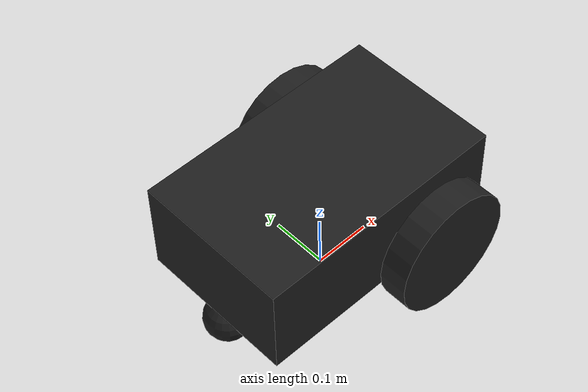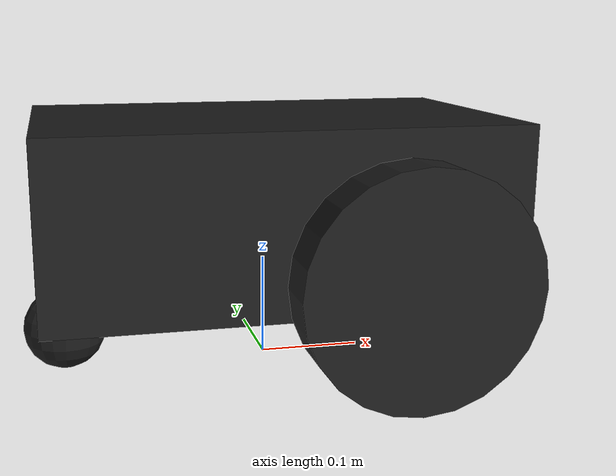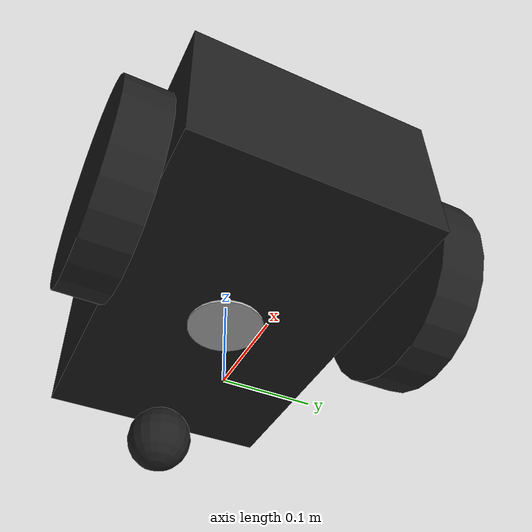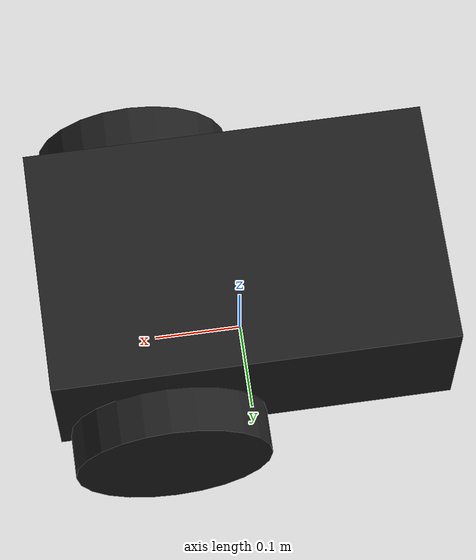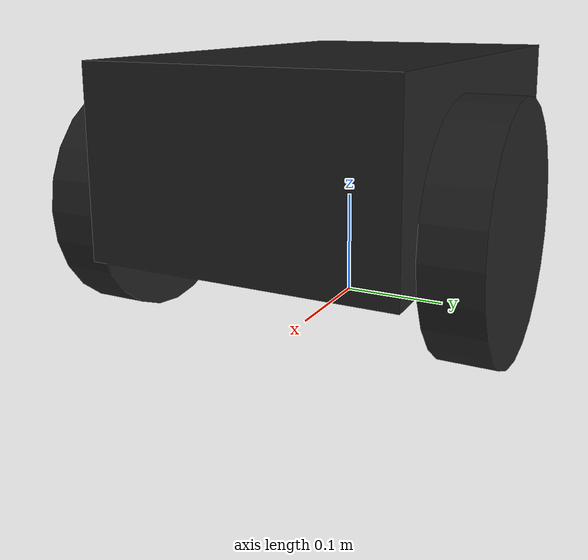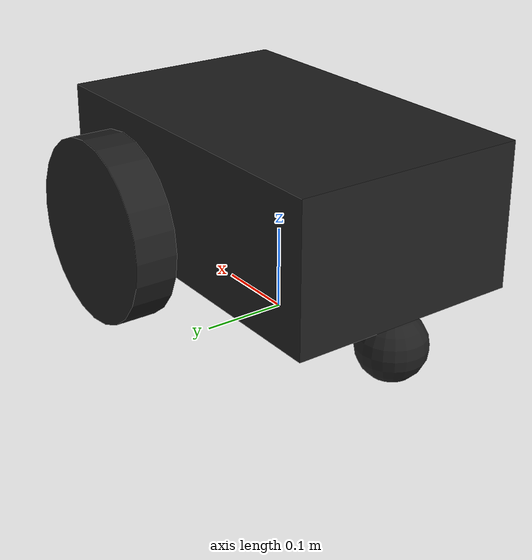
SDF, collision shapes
<?xml version="1.0"?>
<sdf version="1.7">
    <model name="pioneer2dx_laser_imu">
        <include>
            <uri>model://pioneer2dx</uri>
        </include>

        <include>
            <uri>model://velodyne_hdl-32</uri>
        </include>

        <joint name="lidar_joint" type="revolute">
            <parent>pioneer2dx_laser_imu::pioneer2dx::chassis</parent>
            <child>pioneer2dx_laser_imu::velodyne_hdl-32::base</child>
            <axis>
                <xyz>0 0 2</xyz>
                <limit>
                    <lower>0</lower>
                    <upper>0</upper>
                </limit>
            </axis>
        </joint>

    </model>

</sdf>

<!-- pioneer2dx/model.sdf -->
<sdf version="1.5">
  <model name="pioneer2dx">
    <link name="chassis">
      <pose>0 0 0.16 0 0 0</pose>
      <inertial>
        <mass>5.67</mass>
        <inertia>
          <ixx>0.07</ixx>
          <iyy>0.08</iyy>
          <izz>0.10</izz>
          <ixy>0</ixy>
          <ixz>0</ixz>
          <iyz>0</iyz>
        </inertia>
      </inertial>
      <collision name="collision">
        <geometry>
          <box>
            <size>0.445 0.277 0.17</size>
          </box>
        </geometry>
      </collision>
      <collision name="castor_collision">
        <pose>-0.200 0 -0.12 0 0 0</pose>
        <geometry>
          <sphere>
            <radius>0.04</radius>
          </sphere>
        </geometry>
        <surface>
          <friction>
            <ode>
              <mu>0</mu>
              <mu2>0</mu2>
              <slip1>1.0</slip1>
              <slip2>1.0</slip2>
            </ode>
          </friction>
        </surface>
      </collision>
      <visual name="visual">
        <pose>0 0 0.04 0 0 0</pose>
        <geometry>
          <mesh>
            <uri>model://../model_source/models/pioneer2dx/meshes/chassis.dae</uri>
          </mesh>
        </geometry>
      </visual>
      <visual name="castor_visual">
        <pose>-0.200 0 -0.12 0 0 0</pose>
        <geometry>
          <sphere>
            <radius>0.04</radius>
          </sphere>
        </geometry>
        <material>
          <script>
            <uri>file://media/materials/scripts/gazebo.material</uri>
            <name>Gazebo/FlatBlack</name>
          </script>
        </material>
      </visual>
    </link>
    <link name="right_wheel">
      <pose>0.1 -.17 0.11 0 1.5707 1.5707</pose>
      <inertial>
        <mass>1.5</mass>
        <inertia>
          <ixx>0.0051</ixx>
          <iyy>0.0051</iyy>
          <izz>0.0090</izz>
          <ixy>0</ixy>
          <ixz>0</ixz>
          <iyz>0</iyz>
        </inertia>
      </inertial>
      <collision name="collision">
        <geometry>
          <cylinder>
            <radius>0.11</radius>
            <length>0.05</length>
          </cylinder>
        </geometry>
        <surface>
          <friction>
            <ode>
              <mu>100000.0</mu>
              <mu2>100000.0</mu2>
              <slip1>0.0</slip1>
              <slip2>0.0</slip2>
            </ode>
          </friction>
        </surface>
      </collision>
      <visual name="visual">
        <geometry>
          <cylinder>
            <radius>0.11</radius>
            <length>0.05</length>
          </cylinder>
        </geometry>
        <material>
          <script>
            <uri>file://media/materials/scripts/gazebo.material</uri>
            <name>Gazebo/FlatBlack</name>
          </script>
        </material>
      </visual>
    </link>
    <link name="left_wheel">
      <pose>0.1 .17 0.11 0 1.5707 1.5707</pose>
      <inertial>
        <mass>1.5</mass>
        <inertia>
          <ixx>0.0051</ixx>
          <iyy>0.0051</iyy>
          <izz>0.0090</izz>
          <ixy>0</ixy>
          <ixz>0</ixz>
          <iyz>0</iyz>
        </inertia>
      </inertial>
      <collision name="collision">
        <geometry>
          <cylinder>
            <radius>0.11</radius>
            <length>0.05</length>
          </cylinder>
        </geometry>
        <surface>
          <friction>
            <ode>
              <mu>100000.0</mu>
              <mu2>100000.0</mu2>
              <slip1>0.0</slip1>
              <slip2>0.0</slip2>
            </ode>
          </friction>
        </surface>
      </collision>
      <visual name="visual">
        <geometry>
          <cylinder>
            <radius>0.11</radius>
            <length>0.05</length>
          </cylinder>
        </geometry>
        <material>
          <script>
            <uri>file://media/materials/scripts/gazebo.material</uri>
            <name>Gazebo/FlatBlack</name>
          </script>
        </material>
      </visual>
    </link>
    <joint type="revolute" name="left_wheel_hinge">
      <pose>0 0 -0.03 0 0 0</pose>
      <child>left_wheel</child>
      <parent>chassis</parent>
      <axis>
        <xyz>0 1 0</xyz>
        <use_parent_model_frame>true</use_parent_model_frame>
      </axis>
    </joint>
    <joint type="revolute" name="right_wheel_hinge">
      <pose>0 0 0.03 0 0 0</pose>
      <child>right_wheel</child>
      <parent>chassis</parent>
      <axis>
        <xyz>0 1 0</xyz>
        <use_parent_model_frame>true</use_parent_model_frame>
      </axis>
    </joint>
    <plugin filename="libDiffDrivePlugin.so" name="diff_drive">
      <left_joint>left_wheel_hinge</left_joint>
      <right_joint>right_wheel_hinge</right_joint>
      <torque>5</torque>
    </plugin>
  </model>
</sdf>

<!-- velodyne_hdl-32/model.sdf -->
<!-- This sdf copies the values used in the velodyne_description urdf file. -->
<sdf version="1.7">
    <model name="velodyne_hdl-32">
        <!-- Give the base link a unique name -->
        <link name="velodyne_base_link">
            <pose>0 0 0.07212 0 0 0</pose>
            <inertial>
                <mass>1.0</mass>
                <inertia>
                    <ixx>0.002188947</ixx>
                    <iyy>0.002188947</iyy>
                    <izz>0.000910364</izz>
                    <ixy>0</ixy>
                    <ixz>0</ixz>
                    <iyz>0</iyz>
                </inertia>
            </inertial>

            <collision name="velodyne_base_link_collision">
                <pose>0 0 0.07212 0 0 0</pose>
                <geometry>
                    <cylinder>
                        <!-- Radius and length provided by Velodyne -->
                        <radius>.04267</radius>
                        <length>.14424</length>
                    </cylinder>
                </geometry>
            </collision>

            <!-- The visual is mostly a copy of the collision -->
            <visual name="velodyne_base_link_visual">
                <pose>0 0 0.07212 0 0 0</pose>
                <geometry>
                    <cylinder>
                        <radius>.04267</radius>
                        <length>.14424</length>
                    </cylinder>
                </geometry>
            </visual>
        </link>

        <joint type="fixed" name="velodyne_base2scan_joint">
            <!-- Position the joint at the bottom of the top link -->
            <pose>0 0 0.09081 0 0 0</pose>
            <parent>velodyne_base_link</parent>
            <child>velodyne_scan_link</child>
        </joint>

        <!-- Give the scan link a unique name -->
        <link name="velodyne_scan_link">
            <pose>0 0 0 0 0 0</pose>
            <inertial>
                <mass>0.01</mass>
                <inertia>
                    <ixx>0.0000001</ixx>
                    <iyy>0.0000001</iyy>
                    <izz>0.0000001</izz>
                    <ixy>0</ixy>
                    <ixz>0</ixz>
                    <iyz>0</iyz>
                </inertia>
            </inertial>

            <!-- Ray sensor values obtained from the velodyne_simulator package -->
            <sensor type="ray" name="sensor">
                <!-- Position the ray sensor based on the specification. -->
                <pose>0 0 0.004645 0 0 0</pose>
                <visualize>false</visualize>
                <!-- Set the update rate of the sensor in hz. -->
                <update_rate>10</update_rate>

                <ray>
                    <!-- The scan element contains the horizontal and vertical beams. -->
                    <scan>
                        <horizontal>
                            <samples>200</samples>
                            <resolution>1</resolution>
                            <min_angle>-3.1415927</min_angle>
                            <max_angle>3.1415927</max_angle>
                        </horizontal>
                        <vertical>
                            <samples>1</samples>
                            <resolution>32</resolution>
                            <min_angle>-0.53529248</min_angle>
                            <max_angle>0.18622663</max_angle>
                        </vertical>
                    </scan>

                    <!-- Range defines characteristics of an individual beam -->
                    <range>
                        <!-- Minimum distance of the beam -->
                        <min>0.3</min>
                        <!-- Maximum distance of the beam -->
                        <max>130.0</max>
                        <!-- Linear resolution of the beam -->
                        <resolution>0.001</resolution>
                    </range>
                    <noise>
                        <type>gaussian</type>
                        <mean>0.0</mean>
                        <stddev>0.0</stddev>
                    </noise>
                </ray>

                <!-- Laser Plugin -->
                <plugin name="gazebo_ros_laser_controller" filename="libgazebo_ros_velodyne_laser.so">
                    <topicName>/velodyne_points2</topicName>
                    <frameName>/velodyne</frameName>
                    <min_range>0.3</min_range>
                    <max_range>130.0</max_range>
                    <gaussianNoise>0.008</gaussianNoise>
                </plugin>
            </sensor>
        </link>
    </model>
</sdf>
